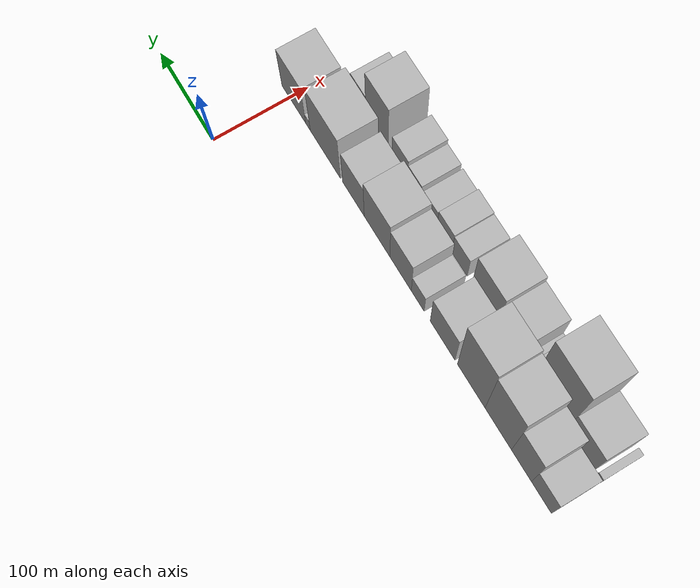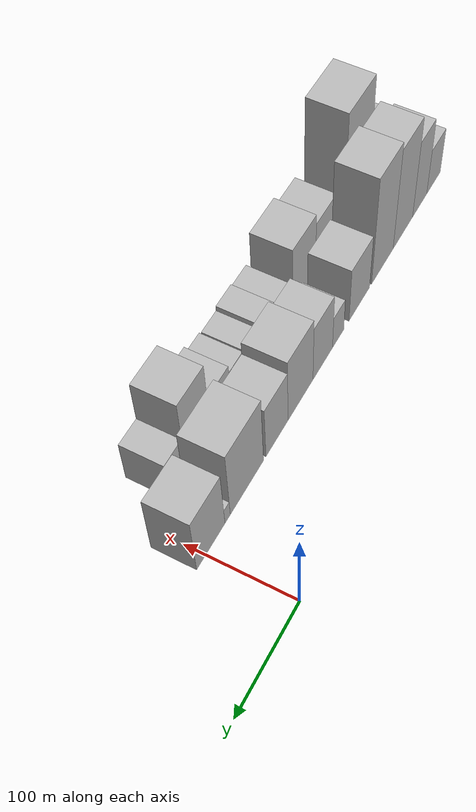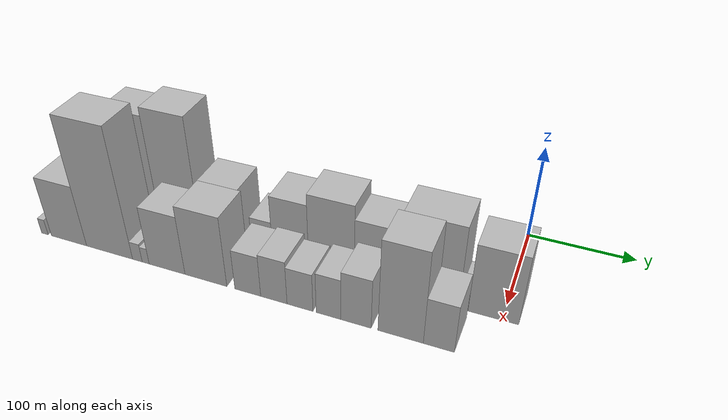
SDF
<sdf version="1.6">
 <world name="default">
  <model name="building_1">
   <static>1</static>
   <pose>100.0000 -422.6857 0 0.000000 0.000000 0.000000</pose>
   <link name="link">
    <pose>0 0 28.50 0 0 0</pose>
    <collision name="collision"><geometry><box><size>40.0000 30.6286 57.0000</size></box></geometry></collision>
    <visual name="visual">
     <cast_shadows>0</cast_shadows>
     <geometry><box><size>40.0000 30.6286 57.0000</size></box></geometry>
     <material>
      <script>
       <uri>model://HANNAS_wall/materials/scripts</uri>
       <uri>model://HANNAS_wall/materials/textures</uri>
       <name>vrc/HANNAS_wall</name>
      </script>
     </material>
    </visual>
   </link>
  </model>
  <model name="building_2">
   <static>1</static>
   <pose>100.0000 -391.8067 0 0.000000 0.000000 0.000000</pose>
   <link name="link">
    <pose>0 0 48.00 0 0 0</pose>
    <collision name="collision"><geometry><box><size>40.0000 31.1294 96.0000</size></box></geometry></collision>
    <visual name="visual">
     <cast_shadows>0</cast_shadows>
     <geometry><box><size>40.0000 31.1294 96.0000</size></box></geometry>
     <material>
      <script>
       <uri>model://HANNAS_wall/materials/scripts</uri>
       <uri>model://HANNAS_wall/materials/textures</uri>
       <name>vrc/HANNAS_wall</name>
      </script>
     </material>
    </visual>
   </link>
  </model>
  <model name="building_3">
   <static>1</static>
   <pose>100.0000 -355.4414 0 0.000000 0.000000 0.000000</pose>
   <link name="link">
    <pose>0 0 63.00 0 0 0</pose>
    <collision name="collision"><geometry><box><size>40.0000 41.6011 126.0000</size></box></geometry></collision>
    <visual name="visual">
     <cast_shadows>0</cast_shadows>
     <geometry><box><size>40.0000 41.6011 126.0000</size></box></geometry>
     <material>
      <script>
       <uri>model://HANNAS_wall/materials/scripts</uri>
       <uri>model://HANNAS_wall/materials/textures</uri>
       <name>vrc/HANNAS_wall</name>
      </script>
     </material>
    </visual>
   </link>
  </model>
  <model name="building_4">
   <static>1</static>
   <pose>100.0000 -312.4652 0 0.000000 0.000000 0.000000</pose>
   <link name="link">
    <pose>0 0 67.50 0 0 0</pose>
    <collision name="collision"><geometry><box><size>40.0000 44.3513 135.0000</size></box></geometry></collision>
    <visual name="visual">
     <cast_shadows>0</cast_shadows>
     <geometry><box><size>40.0000 44.3513 135.0000</size></box></geometry>
     <material>
      <script>
       <uri>model://HANNAS_wall/materials/scripts</uri>
       <uri>model://HANNAS_wall/materials/textures</uri>
       <name>vrc/HANNAS_wall</name>
      </script>
     </material>
    </visual>
   </link>
  </model>
  <model name="building_5">
   <static>1</static>
   <pose>100.0000 -265.9892 0 0.000000 0.000000 0.000000</pose>
   <link name="link">
    <pose>0 0 34.50 0 0 0</pose>
    <collision name="collision"><geometry><box><size>40.0000 40.6008 69.0000</size></box></geometry></collision>
    <visual name="visual">
     <cast_shadows>0</cast_shadows>
     <geometry><box><size>40.0000 40.6008 69.0000</size></box></geometry>
     <material>
      <script>
       <uri>model://HANNAS_wall/materials/scripts</uri>
       <uri>model://HANNAS_wall/materials/textures</uri>
       <name>vrc/HANNAS_wall</name>
      </script>
     </material>
    </visual>
   </link>
  </model>
  <model name="building_6">
   <static>1</static>
   <pose>100.0000 -224.9638 0 0.000000 0.000000 0.000000</pose>
   <link name="link">
    <pose>0 0 21.00 0 0 0</pose>
    <collision name="collision"><geometry><box><size>40.0000 21.4500 42.0000</size></box></geometry></collision>
    <visual name="visual">
     <cast_shadows>0</cast_shadows>
     <geometry><box><size>40.0000 21.4500 42.0000</size></box></geometry>
     <material>
      <script>
       <uri>model://HANNAS_wall/materials/scripts</uri>
       <uri>model://HANNAS_wall/materials/textures</uri>
       <name>vrc/HANNAS_wall</name>
      </script>
     </material>
    </visual>
   </link>
  </model>
  <model name="building_7">
   <static>1</static>
   <pose>100.0000 -196.2019 0 0.000000 0.000000 0.000000</pose>
   <link name="link">
    <pose>0 0 36.00 0 0 0</pose>
    <collision name="collision"><geometry><box><size>40.0000 36.0739 72.0000</size></box></geometry></collision>
    <visual name="visual">
     <cast_shadows>0</cast_shadows>
     <geometry><box><size>40.0000 36.0739 72.0000</size></box></geometry>
     <material>
      <script>
       <uri>model://HANNAS_wall/materials/scripts</uri>
       <uri>model://HANNAS_wall/materials/textures</uri>
       <name>vrc/HANNAS_wall</name>
      </script>
     </material>
    </visual>
   </link>
  </model>
  <model name="building_8">
   <static>1</static>
   <pose>100.0000 -155.9958 0 0.000000 0.000000 0.000000</pose>
   <link name="link">
    <pose>0 0 42.00 0 0 0</pose>
    <collision name="collision"><geometry><box><size>40.0000 44.3383 84.0000</size></box></geometry></collision>
    <visual name="visual">
     <cast_shadows>0</cast_shadows>
     <geometry><box><size>40.0000 44.3383 84.0000</size></box></geometry>
     <material>
      <script>
       <uri>model://HANNAS_wall/materials/scripts</uri>
       <uri>model://HANNAS_wall/materials/textures</uri>
       <name>vrc/HANNAS_wall</name>
      </script>
     </material>
    </visual>
   </link>
  </model>
  <model name="building_9">
   <static>1</static>
   <pose>100.0000 -114.9520 0 0.000000 0.000000 0.000000</pose>
   <link name="link">
    <pose>0 0 34.50 0 0 0</pose>
    <collision name="collision"><geometry><box><size>40.0000 37.7493 69.0000</size></box></geometry></collision>
    <visual name="visual">
     <cast_shadows>0</cast_shadows>
     <geometry><box><size>40.0000 37.7493 69.0000</size></box></geometry>
     <material>
      <script>
       <uri>model://HANNAS_wall/materials/scripts</uri>
       <uri>model://HANNAS_wall/materials/textures</uri>
       <name>vrc/HANNAS_wall</name>
      </script>
     </material>
    </visual>
   </link>
  </model>
  <model name="building_10">
   <static>1</static>
   <pose>100.0000 -65.1110 0 0.000000 0.000000 0.000000</pose>
   <link name="link">
    <pose>0 0 45.00 0 0 0</pose>
    <collision name="collision"><geometry><box><size>40.0000 53.9326 90.0000</size></box></geometry></collision>
    <visual name="visual">
     <cast_shadows>0</cast_shadows>
     <geometry><box><size>40.0000 53.9326 90.0000</size></box></geometry>
     <material>
      <script>
       <uri>model://HANNAS_wall/materials/scripts</uri>
       <uri>model://HANNAS_wall/materials/textures</uri>
       <name>vrc/HANNAS_wall</name>
      </script>
     </material>
    </visual>
   </link>
  </model>
  <model name="building_11">
   <static>1</static>
   <pose>100.0000 -33.9370 0 0.000000 0.000000 0.000000</pose>
   <link name="link">
    <pose>0 0 10.50 0 0 0</pose>
    <collision name="collision"><geometry><box><size>40.0000 8.4154 21.0000</size></box></geometry></collision>
    <visual name="visual">
     <cast_shadows>0</cast_shadows>
     <geometry><box><size>40.0000 8.4154 21.0000</size></box></geometry>
     <material>
      <script>
       <uri>model://HANNAS_wall/materials/scripts</uri>
       <uri>model://HANNAS_wall/materials/textures</uri>
       <name>vrc/HANNAS_wall</name>
      </script>
     </material>
    </visual>
   </link>
  </model>
  <model name="building_12">
   <static>1</static>
   <pose>100.0000 -7.9992 0 0.000000 0.000000 0.000000</pose>
   <link name="link">
    <pose>0 0 37.50 0 0 0</pose>
    <collision name="collision"><geometry><box><size>40.0000 43.4603 75.0000</size></box></geometry></collision>
    <visual name="visual">
     <cast_shadows>0</cast_shadows>
     <geometry><box><size>40.0000 43.4603 75.0000</size></box></geometry>
     <material>
      <script>
       <uri>model://HANNAS_wall/materials/scripts</uri>
       <uri>model://HANNAS_wall/materials/textures</uri>
       <name>vrc/HANNAS_wall</name>
      </script>
     </material>
    </visual>
   </link>
  </model>
  <model name="building_26">
   <static>1</static>
   <pose>149.0000 -434.2724 0 0.000000 0.000000 0.000000</pose>
   <link name="link">
    <pose>0 0 9.00 0 0 0</pose>
    <collision name="collision"><geometry><box><size>40.0000 7.4552 18.0000</size></box></geometry></collision>
    <visual name="visual">
     <cast_shadows>0</cast_shadows>
     <geometry><box><size>40.0000 7.4552 18.0000</size></box></geometry>
     <material>
      <script>
       <uri>model://HANNAS_wall/materials/scripts</uri>
       <uri>model://HANNAS_wall/materials/textures</uri>
       <name>vrc/HANNAS_wall</name>
      </script>
     </material>
    </visual>
   </link>
  </model>
  <model name="building_27">
   <static>1</static>
   <pose>149.0000 -406.1737 0 0.000000 0.000000 0.000000</pose>
   <link name="link">
    <pose>0 0 34.50 0 0 0</pose>
    <collision name="collision"><geometry><box><size>40.0000 40.7422 69.0000</size></box></geometry></collision>
    <visual name="visual">
     <cast_shadows>0</cast_shadows>
     <geometry><box><size>40.0000 40.7422 69.0000</size></box></geometry>
     <material>
      <script>
       <uri>model://HANNAS_wall/materials/scripts</uri>
       <uri>model://HANNAS_wall/materials/textures</uri>
       <name>vrc/HANNAS_wall</name>
      </script>
     </material>
    </visual>
   </link>
  </model>
  <model name="building_28">
   <static>1</static>
   <pose>149.0000 -360.2219 0 0.000000 0.000000 0.000000</pose>
   <link name="link">
    <pose>0 0 72.00 0 0 0</pose>
    <collision name="collision"><geometry><box><size>40.0000 51.1612 144.0000</size></box></geometry></collision>
    <visual name="visual">
     <cast_shadows>0</cast_shadows>
     <geometry><box><size>40.0000 51.1612 144.0000</size></box></geometry>
     <material>
      <script>
       <uri>model://HANNAS_wall/materials/scripts</uri>
       <uri>model://HANNAS_wall/materials/textures</uri>
       <name>vrc/HANNAS_wall</name>
      </script>
     </material>
    </visual>
   </link>
  </model>
  <model name="building_29">
   <static>1</static>
   <pose>149.0000 -329.3915 0 0.000000 0.000000 0.000000</pose>
   <link name="link">
    <pose>0 0 10.50 0 0 0</pose>
    <collision name="collision"><geometry><box><size>40.0000 10.4996 21.0000</size></box></geometry></collision>
    <visual name="visual">
     <cast_shadows>0</cast_shadows>
     <geometry><box><size>40.0000 10.4996 21.0000</size></box></geometry>
     <material>
      <script>
       <uri>model://HANNAS_wall/materials/scripts</uri>
       <uri>model://HANNAS_wall/materials/textures</uri>
       <name>vrc/HANNAS_wall</name>
      </script>
     </material>
    </visual>
   </link>
  </model>
  <model name="building_30">
   <static>1</static>
   <pose>149.0000 -320.4100 0 0.000000 0.000000 0.000000</pose>
   <link name="link">
    <pose>0 0 9.00 0 0 0</pose>
    <collision name="collision"><geometry><box><size>40.0000 7.4635 18.0000</size></box></geometry></collision>
    <visual name="visual">
     <cast_shadows>0</cast_shadows>
     <geometry><box><size>40.0000 7.4635 18.0000</size></box></geometry>
     <material>
      <script>
       <uri>model://HANNAS_wall/materials/scripts</uri>
       <uri>model://HANNAS_wall/materials/textures</uri>
       <name>vrc/HANNAS_wall</name>
      </script>
     </material>
    </visual>
   </link>
  </model>
  <model name="building_31">
   <static>1</static>
   <pose>149.0000 -297.7112 0 0.000000 0.000000 0.000000</pose>
   <link name="link">
    <pose>0 0 33.00 0 0 0</pose>
    <collision name="collision"><geometry><box><size>40.0000 37.9340 66.0000</size></box></geometry></collision>
    <visual name="visual">
     <cast_shadows>0</cast_shadows>
     <geometry><box><size>40.0000 37.9340 66.0000</size></box></geometry>
     <material>
      <script>
       <uri>model://HANNAS_wall/materials/scripts</uri>
       <uri>model://HANNAS_wall/materials/textures</uri>
       <name>vrc/HANNAS_wall</name>
      </script>
     </material>
    </visual>
   </link>
  </model>
  <model name="building_32">
   <static>1</static>
   <pose>149.0000 -257.3975 0 0.000000 0.000000 0.000000</pose>
   <link name="link">
    <pose>0 0 39.00 0 0 0</pose>
    <collision name="collision"><geometry><box><size>40.0000 42.6934 78.0000</size></box></geometry></collision>
    <visual name="visual">
     <cast_shadows>0</cast_shadows>
     <geometry><box><size>40.0000 42.6934 78.0000</size></box></geometry>
     <material>
      <script>
       <uri>model://HANNAS_wall/materials/scripts</uri>
       <uri>model://HANNAS_wall/materials/textures</uri>
       <name>vrc/HANNAS_wall</name>
      </script>
     </material>
    </visual>
   </link>
  </model>
  <model name="building_33">
   <static>1</static>
   <pose>149.0000 -215.3264 0 0.000000 0.000000 0.000000</pose>
   <link name="link">
    <pose>0 0 22.50 0 0 0</pose>
    <collision name="collision"><geometry><box><size>40.0000 25.4488 45.0000</size></box></geometry></collision>
    <visual name="visual">
     <cast_shadows>0</cast_shadows>
     <geometry><box><size>40.0000 25.4488 45.0000</size></box></geometry>
     <material>
      <script>
       <uri>model://HANNAS_wall/materials/scripts</uri>
       <uri>model://HANNAS_wall/materials/textures</uri>
       <name>vrc/HANNAS_wall</name>
      </script>
     </material>
    </visual>
   </link>
  </model>
  <model name="building_34">
   <static>1</static>
   <pose>149.0000 -189.9438 0 0.000000 0.000000 0.000000</pose>
   <link name="link">
    <pose>0 0 24.00 0 0 0</pose>
    <collision name="collision"><geometry><box><size>40.0000 25.3166 48.0000</size></box></geometry></collision>
    <visual name="visual">
     <cast_shadows>0</cast_shadows>
     <geometry><box><size>40.0000 25.3166 48.0000</size></box></geometry>
     <material>
      <script>
       <uri>model://HANNAS_wall/materials/scripts</uri>
       <uri>model://HANNAS_wall/materials/textures</uri>
       <name>vrc/HANNAS_wall</name>
      </script>
     </material>
    </visual>
   </link>
  </model>
  <model name="building_35">
   <static>1</static>
   <pose>149.0000 -165.1191 0 0.000000 0.000000 0.000000</pose>
   <link name="link">
    <pose>0 0 21.00 0 0 0</pose>
    <collision name="collision"><geometry><box><size>40.0000 24.3327 42.0000</size></box></geometry></collision>
    <visual name="visual">
     <cast_shadows>0</cast_shadows>
     <geometry><box><size>40.0000 24.3327 42.0000</size></box></geometry>
     <material>
      <script>
       <uri>model://HANNAS_wall/materials/scripts</uri>
       <uri>model://HANNAS_wall/materials/textures</uri>
       <name>vrc/HANNAS_wall</name>
      </script>
     </material>
    </visual>
   </link>
  </model>
  <model name="building_36">
   <static>1</static>
   <pose>149.0000 -138.6496 0 0.000000 0.000000 0.000000</pose>
   <link name="link">
    <pose>0 0 22.50 0 0 0</pose>
    <collision name="collision"><geometry><box><size>40.0000 22.6065 45.0000</size></box></geometry></collision>
    <visual name="visual">
     <cast_shadows>0</cast_shadows>
     <geometry><box><size>40.0000 22.6065 45.0000</size></box></geometry>
     <material>
      <script>
       <uri>model://HANNAS_wall/materials/scripts</uri>
       <uri>model://HANNAS_wall/materials/textures</uri>
       <name>vrc/HANNAS_wall</name>
      </script>
     </material>
    </visual>
   </link>
  </model>
  <model name="building_37">
   <static>1</static>
   <pose>149.0000 -113.7449 0 0.000000 0.000000 0.000000</pose>
   <link name="link">
    <pose>0 0 27.00 0 0 0</pose>
    <collision name="collision"><geometry><box><size>40.0000 27.2029 54.0000</size></box></geometry></collision>
    <visual name="visual">
     <cast_shadows>0</cast_shadows>
     <geometry><box><size>40.0000 27.2029 54.0000</size></box></geometry>
     <material>
      <script>
       <uri>model://HANNAS_wall/materials/scripts</uri>
       <uri>model://HANNAS_wall/materials/textures</uri>
       <name>vrc/HANNAS_wall</name>
      </script>
     </material>
    </visual>
   </link>
  </model>
  <model name="building_38">
   <static>1</static>
   <pose>149.0000 -74.5213 0 0.000000 0.000000 0.000000</pose>
   <link name="link">
    <pose>0 0 49.50 0 0 0</pose>
    <collision name="collision"><geometry><box><size>40.0000 39.2442 99.0000</size></box></geometry></collision>
    <visual name="visual">
     <cast_shadows>0</cast_shadows>
     <geometry><box><size>40.0000 39.2442 99.0000</size></box></geometry>
     <material>
      <script>
       <uri>model://HANNAS_wall/materials/scripts</uri>
       <uri>model://HANNAS_wall/materials/textures</uri>
       <name>vrc/HANNAS_wall</name>
      </script>
     </material>
    </visual>
   </link>
  </model>
  <model name="building_39">
   <static>1</static>
   <pose>149.0000 -41.8490 0 0.000000 0.000000 0.000000</pose>
   <link name="link">
    <pose>0 0 25.50 0 0 0</pose>
    <collision name="collision"><geometry><box><size>40.0000 26.1003 51.0000</size></box></geometry></collision>
    <visual name="visual">
     <cast_shadows>0</cast_shadows>
     <geometry><box><size>40.0000 26.1003 51.0000</size></box></geometry>
     <material>
      <script>
       <uri>model://HANNAS_wall/materials/scripts</uri>
       <uri>model://HANNAS_wall/materials/textures</uri>
       <name>vrc/HANNAS_wall</name>
      </script>
     </material>
    </visual>
   </link>
  </model>
 </world>
</sdf>
